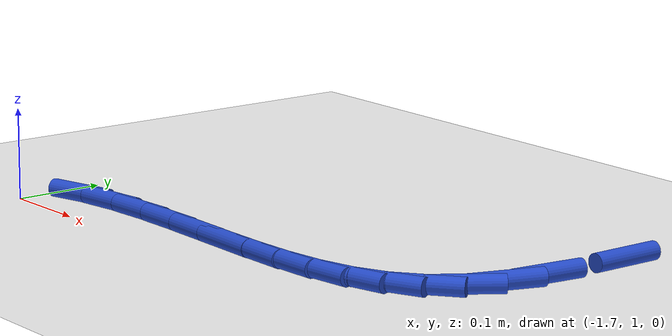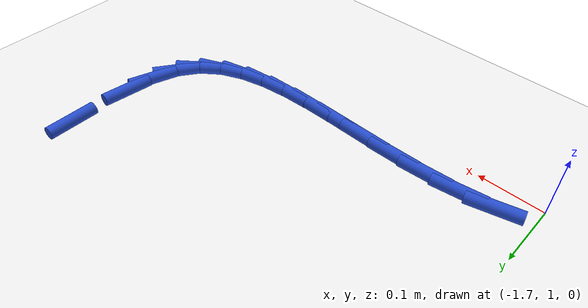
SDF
<sdf version="1.6">
 <world name="default">
  <model name="ground_plane">
   <static>1</static>
   <link name="link">
    <collision name="collision">
     <geometry><plane><normal>0 0 1</normal><size>100 100</size></plane></geometry>
     <surface><friction><ode><mu>100</mu><mu2>50</mu2></ode></friction></surface>
    </collision>
    <visual name="visual">
     <cast_shadows>0</cast_shadows>
     <geometry><plane><normal>0 0 1</normal><size>100 100</size></plane></geometry>
     <material>
      <script><uri>file://media/materials/scripts/gazebo.material</uri><name>Gazebo/WhiteGlow</name></script>
     </material>
    </visual>
   </link>
  </model>
  <model name="line">
   <link name="link_47">
    <pose>-1.096759279337885 1.3299534745837982 0.01 0 1.57 -1.5641857784162334</pose>
    <collision name="collision">
     <geometry><cylinder><radius>0.01</radius><length>0.08</length></cylinder></geometry>
    </collision>
    <visual name="visual">
     <material>
      <script><name>Gazebo/Blue</name><uri>file://media/materials/scripts/gazebo.material</uri></script>
     </material>
     <geometry><cylinder><radius>0.01</radius><length>0.08</length></cylinder></geometry>
    </visual>
   </link>
   <link name="link_49">
    <pose>-1.0976311763460924 1.2285800444862605 0.01 0 1.57 1.4500921973668244</pose>
    <collision name="collision">
     <geometry><cylinder><radius>0.01</radius><length>0.08</length></cylinder></geometry>
    </collision>
    <visual name="visual">
     <material>
      <script><name>Gazebo/Blue</name><uri>file://media/materials/scripts/gazebo.material</uri></script>
     </material>
     <geometry><cylinder><radius>0.01</radius><length>0.08</length></cylinder></geometry>
    </visual>
   </link>
   <link name="link_50">
    <pose>-1.1034996562968362 1.1801976733900603 0.01 0 1.57 1.247685210929813</pose>
    <collision name="collision">
     <geometry><cylinder><radius>0.01</radius><length>0.08</length></cylinder></geometry>
    </collision>
    <visual name="visual">
     <material>
      <script><name>Gazebo/Blue</name><uri>file://media/materials/scripts/gazebo.material</uri></script>
     </material>
     <geometry><cylinder><radius>0.01</radius><length>0.08</length></cylinder></geometry>
    </visual>
   </link>
   <link name="link_51">
    <pose>-1.116979054578009 1.1399421286384048 0.01 0 1.57 0.9585325866514751</pose>
    <collision name="collision">
     <geometry><cylinder><radius>0.01</radius><length>0.08</length></cylinder></geometry>
    </collision>
    <visual name="visual">
     <material>
      <script><name>Gazebo/Blue</name><uri>file://media/materials/scripts/gazebo.material</uri></script>
     </material>
     <geometry><cylinder><radius>0.01</radius><length>0.08</length></cylinder></geometry>
    </visual>
   </link>
   <link name="link_52">
    <pose>-1.1386770717271772 1.1090462009163031 0.01 0 1.57 0.6643002942133427</pose>
    <collision name="collision">
     <geometry><cylinder><radius>0.01</radius><length>0.08</length></cylinder></geometry>
    </collision>
    <visual name="visual">
     <material>
      <script><name>Gazebo/Blue</name><uri>file://media/materials/scripts/gazebo.material</uri></script>
     </material>
     <geometry><cylinder><radius>0.01</radius><length>0.08</length></cylinder></geometry>
    </visual>
   </link>
   <link name="link_53">
    <pose>-1.167663411075158 1.0863493592774023 0.01 0 1.57 0.4183153253839914</pose>
    <collision name="collision">
     <geometry><cylinder><radius>0.01</radius><length>0.08</length></cylinder></geometry>
    </collision>
    <visual name="visual">
     <material>
      <script><name>Gazebo/Blue</name><uri>file://media/materials/scripts/gazebo.material</uri></script>
     </material>
     <geometry><cylinder><radius>0.01</radius><length>0.08</length></cylinder></geometry>
    </visual>
   </link>
   <link name="link_54">
    <pose>-1.2029806993120946 1.0706489380370365 0.01 0 1.57 0.23881555728746684</pose>
    <collision name="collision">
     <geometry><cylinder><radius>0.01</radius><length>0.08</length></cylinder></geometry>
    </collision>
    <visual name="visual">
     <material>
      <script><name>Gazebo/Blue</name><uri>file://media/materials/scripts/gazebo.material</uri></script>
     </material>
     <geometry><cylinder><radius>0.01</radius><length>0.08</length></cylinder></geometry>
    </visual>
   </link>
   <link name="link_55">
    <pose>-1.2436715631281288 1.0607422715105401 0.01 0 1.57 0.11730256414850729</pose>
    <collision name="collision">
     <geometry><cylinder><radius>0.01</radius><length>0.08</length></cylinder></geometry>
    </collision>
    <visual name="visual">
     <material>
      <script><name>Gazebo/Blue</name><uri>file://media/materials/scripts/gazebo.material</uri></script>
     </material>
     <geometry><cylinder><radius>0.01</radius><length>0.08</length></cylinder></geometry>
    </visual>
   </link>
   <link name="link_56">
    <pose>-1.2887786292134027 1.0554266940132477 0.01 0 1.57 0.03966041615955418</pose>
    <collision name="collision">
     <geometry><cylinder><radius>0.01</radius><length>0.08</length></cylinder></geometry>
    </collision>
    <visual name="visual">
     <material>
      <script><name>Gazebo/Blue</name><uri>file://media/materials/scripts/gazebo.material</uri></script>
     </material>
     <geometry><cylinder><radius>0.01</radius><length>0.08</length></cylinder></geometry>
    </visual>
   </link>
   <link name="link_57">
    <pose>-1.337344524258059 1.0534995398604932 0.01 0 1.57 -0.0050639262290288105</pose>
    <collision name="collision">
     <geometry><cylinder><radius>0.01</radius><length>0.08</length></cylinder></geometry>
    </collision>
    <visual name="visual">
     <material>
      <script><name>Gazebo/Blue</name><uri>file://media/materials/scripts/gazebo.material</uri></script>
     </material>
     <geometry><cylinder><radius>0.01</radius><length>0.08</length></cylinder></geometry>
    </visual>
   </link>
   <link name="link_58">
    <pose>-1.3884118749522403 1.0537581433676109 0.01 0 1.57 -0.02359686741964674</pose>
    <collision name="collision">
     <geometry><cylinder><radius>0.01</radius><length>0.08</length></cylinder></geometry>
    </collision>
    <visual name="visual">
     <material>
      <script><name>Gazebo/Blue</name><uri>file://media/materials/scripts/gazebo.material</uri></script>
     </material>
     <geometry><cylinder><radius>0.01</radius><length>0.08</length></cylinder></geometry>
    </visual>
   </link>
   <link name="link_59">
    <pose>-1.441023307986088 1.0549998388499349 0.01 0 1.57 -0.019211122536278574</pose>
    <collision name="collision">
     <geometry><cylinder><radius>0.01</radius><length>0.08</length></cylinder></geometry>
    </collision>
    <visual name="visual">
     <material>
      <script><name>Gazebo/Blue</name><uri>file://media/materials/scripts/gazebo.material</uri></script>
     </material>
     <geometry><cylinder><radius>0.01</radius><length>0.08</length></cylinder></geometry>
    </visual>
   </link>
   <link name="link_60">
    <pose>-1.4942214500497455 1.0560219606227996 0.01 0 1.57 0.007573898797423127</pose>
    <collision name="collision">
     <geometry><cylinder><radius>0.01</radius><length>0.08</length></cylinder></geometry>
    </collision>
    <visual name="visual">
     <material>
      <script><name>Gazebo/Blue</name><uri>file://media/materials/scripts/gazebo.material</uri></script>
     </material>
     <geometry><cylinder><radius>0.01</radius><length>0.08</length></cylinder></geometry>
    </visual>
   </link>
   <link name="link_61">
    <pose>-1.5470489278333552 1.0556218430015394 0.01 0 1.57 0.058671527911407916</pose>
    <collision name="collision">
     <geometry><cylinder><radius>0.01</radius><length>0.08</length></cylinder></geometry>
    </collision>
    <visual name="visual">
     <material>
      <script><name>Gazebo/Blue</name><uri>file://media/materials/scripts/gazebo.material</uri></script>
     </material>
     <geometry><cylinder><radius>0.01</radius><length>0.08</length></cylinder></geometry>
    </visual>
   </link>
   <link name="link_62">
    <pose>-1.5985483680270591 1.0525968203014886 0.01 0 1.57 0.1383511118231388</pose>
    <collision name="collision">
     <geometry><cylinder><radius>0.01</radius><length>0.08</length></cylinder></geometry>
    </collision>
    <visual name="visual">
     <material>
      <script><name>Gazebo/Blue</name><uri>file://media/materials/scripts/gazebo.material</uri></script>
     </material>
     <geometry><cylinder><radius>0.01</radius><length>0.08</length></cylinder></geometry>
    </visual>
   </link>
   <link name="link_63">
    <pose>-1.6477623973209983 1.0457442268379809 0.01 0 1.57 0.252947498949655</pose>
    <collision name="collision">
     <geometry><cylinder><radius>0.01</radius><length>0.08</length></cylinder></geometry>
    </collision>
    <visual name="visual">
     <material>
      <script><name>Gazebo/Blue</name><uri>file://media/materials/scripts/gazebo.material</uri></script>
     </material>
     <geometry><cylinder><radius>0.01</radius><length>0.08</length></cylinder></geometry>
    </visual>
   </link>
  </model>
 </world>
</sdf>
